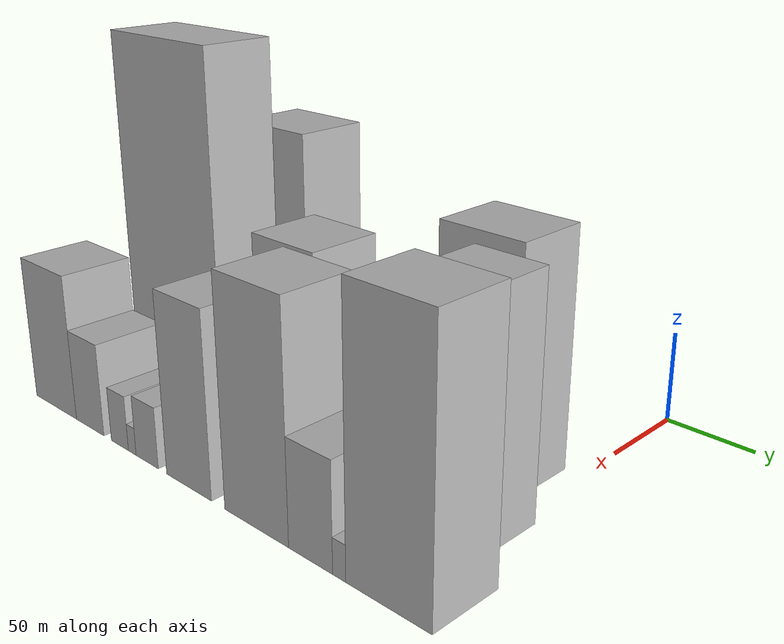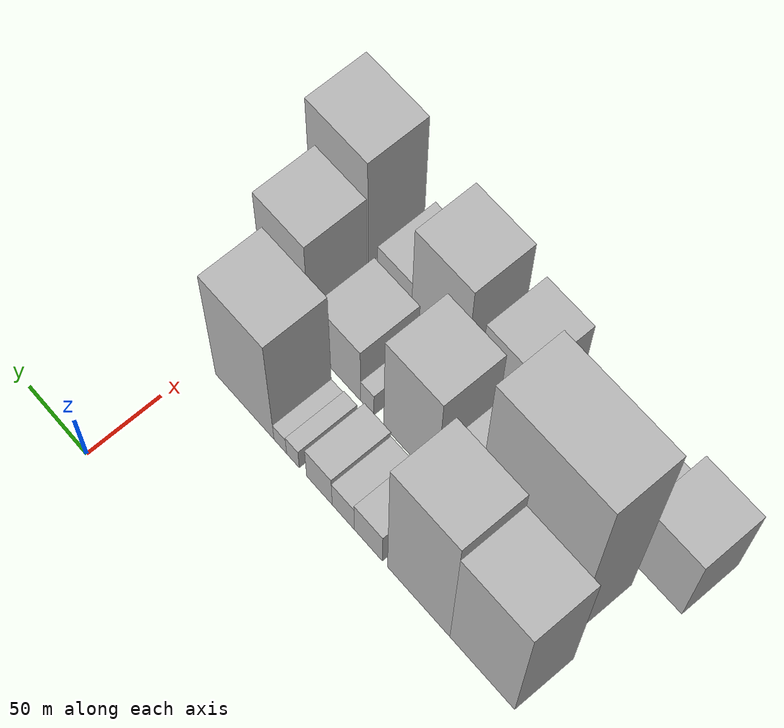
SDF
<sdf version="1.6">
 <world name="default">
  <model name="building_9">
   <static>1</static>
   <pose>100.0000 -223.2876 0 0.000000 0.000000 0.000000</pose>
   <link name="link">
    <pose>0 0 67.50 0 0 0</pose>
    <collision name="collision"><geometry><box><size>40.0000 49.3688 135.0000</size></box></geometry></collision>
    <visual name="visual">
     <cast_shadows>0</cast_shadows>
     <geometry><box><size>40.0000 49.3688 135.0000</size></box></geometry>
     <material>
      <script>
       <uri>model://HANNAS_wall/materials/scripts</uri>
       <uri>model://HANNAS_wall/materials/textures</uri>
       <name>vrc/HANNAS_wall</name>
      </script>
     </material>
    </visual>
   </link>
  </model>
  <model name="building_10">
   <static>1</static>
   <pose>100.0000 -174.2582 0 0.000000 0.000000 0.000000</pose>
   <link name="link">
    <pose>0 0 75.00 0 0 0</pose>
    <collision name="collision"><geometry><box><size>40.0000 48.6901 150.0000</size></box></geometry></collision>
    <visual name="visual">
     <cast_shadows>0</cast_shadows>
     <geometry><box><size>40.0000 48.6901 150.0000</size></box></geometry>
     <material>
      <script>
       <uri>model://HANNAS_wall/materials/scripts</uri>
       <uri>model://HANNAS_wall/materials/textures</uri>
       <name>vrc/HANNAS_wall</name>
      </script>
     </material>
    </visual>
   </link>
  </model>
  <model name="building_11">
   <static>1</static>
   <pose>100.0000 -134.7370 0 0.000000 0.000000 0.000000</pose>
   <link name="link">
    <pose>0 0 19.50 0 0 0</pose>
    <collision name="collision"><geometry><box><size>40.0000 22.3522 39.0000</size></box></geometry></collision>
    <visual name="visual">
     <cast_shadows>0</cast_shadows>
     <geometry><box><size>40.0000 22.3522 39.0000</size></box></geometry>
     <material>
      <script>
       <uri>model://HANNAS_wall/materials/scripts</uri>
       <uri>model://HANNAS_wall/materials/textures</uri>
       <name>vrc/HANNAS_wall</name>
      </script>
     </material>
    </visual>
   </link>
  </model>
  <model name="building_12">
   <static>1</static>
   <pose>100.0000 -114.6446 0 0.000000 0.000000 0.000000</pose>
   <link name="link">
    <pose>0 0 16.50 0 0 0</pose>
    <collision name="collision"><geometry><box><size>40.0000 17.8327 33.0000</size></box></geometry></collision>
    <visual name="visual">
     <cast_shadows>0</cast_shadows>
     <geometry><box><size>40.0000 17.8327 33.0000</size></box></geometry>
     <material>
      <script>
       <uri>model://HANNAS_wall/materials/scripts</uri>
       <uri>model://HANNAS_wall/materials/textures</uri>
       <name>vrc/HANNAS_wall</name>
      </script>
     </material>
    </visual>
   </link>
  </model>
  <model name="building_13">
   <static>1</static>
   <pose>100.0000 -95.3053 0 0.000000 0.000000 0.000000</pose>
   <link name="link">
    <pose>0 0 19.50 0 0 0</pose>
    <collision name="collision"><geometry><box><size>40.0000 20.8459 39.0000</size></box></geometry></collision>
    <visual name="visual">
     <cast_shadows>0</cast_shadows>
     <geometry><box><size>40.0000 20.8459 39.0000</size></box></geometry>
     <material>
      <script>
       <uri>model://HANNAS_wall/materials/scripts</uri>
       <uri>model://HANNAS_wall/materials/textures</uri>
       <name>vrc/HANNAS_wall</name>
      </script>
     </material>
    </visual>
   </link>
  </model>
  <model name="building_14">
   <static>1</static>
   <pose>100.0000 -73.6929 0 0.000000 0.000000 0.000000</pose>
   <link name="link">
    <pose>0 0 12.00 0 0 0</pose>
    <collision name="collision"><geometry><box><size>40.0000 10.3789 24.0000</size></box></geometry></collision>
    <visual name="visual">
     <cast_shadows>0</cast_shadows>
     <geometry><box><size>40.0000 10.3789 24.0000</size></box></geometry>
     <material>
      <script>
       <uri>model://HANNAS_wall/materials/scripts</uri>
       <uri>model://HANNAS_wall/materials/textures</uri>
       <name>vrc/HANNAS_wall</name>
      </script>
     </material>
    </visual>
   </link>
  </model>
  <model name="building_15">
   <static>1</static>
   <pose>100.0000 -63.2719 0 0.000000 0.000000 0.000000</pose>
   <link name="link">
    <pose>0 0 10.50 0 0 0</pose>
    <collision name="collision"><geometry><box><size>40.0000 10.4631 21.0000</size></box></geometry></collision>
    <visual name="visual">
     <cast_shadows>0</cast_shadows>
     <geometry><box><size>40.0000 10.4631 21.0000</size></box></geometry>
     <material>
      <script>
       <uri>model://HANNAS_wall/materials/scripts</uri>
       <uri>model://HANNAS_wall/materials/textures</uri>
       <name>vrc/HANNAS_wall</name>
      </script>
     </material>
    </visual>
   </link>
  </model>
  <model name="building_16">
   <static>1</static>
   <pose>100.0000 -33.5212 0 0.000000 0.000000 0.000000</pose>
   <link name="link">
    <pose>0 0 63.00 0 0 0</pose>
    <collision name="collision"><geometry><box><size>40.0000 49.0381 126.0000</size></box></geometry></collision>
    <visual name="visual">
     <cast_shadows>0</cast_shadows>
     <geometry><box><size>40.0000 49.0381 126.0000</size></box></geometry>
     <material>
      <script>
       <uri>model://HANNAS_wall/materials/scripts</uri>
       <uri>model://HANNAS_wall/materials/textures</uri>
       <name>vrc/HANNAS_wall</name>
      </script>
     </material>
    </visual>
   </link>
  </model>
  <model name="building_41">
   <static>1</static>
   <pose>149.0000 -200.4970 0 0.000000 0.000000 0.000000</pose>
   <link name="link">
    <pose>0 0 99.00 0 0 0</pose>
    <collision name="collision"><geometry><box><size>40.0000 76.5833 198.0000</size></box></geometry></collision>
    <visual name="visual">
     <cast_shadows>0</cast_shadows>
     <geometry><box><size>40.0000 76.5833 198.0000</size></box></geometry>
     <material>
      <script>
       <uri>model://HANNAS_wall/materials/scripts</uri>
       <uri>model://HANNAS_wall/materials/textures</uri>
       <name>vrc/HANNAS_wall</name>
      </script>
     </material>
    </visual>
   </link>
  </model>
  <model name="building_42">
   <static>1</static>
   <pose>149.0000 -147.3521 0 0.000000 0.000000 0.000000</pose>
   <link name="link">
    <pose>0 0 27.00 0 0 0</pose>
    <collision name="collision"><geometry><box><size>40.0000 29.7065 54.0000</size></box></geometry></collision>
    <visual name="visual">
     <cast_shadows>0</cast_shadows>
     <geometry><box><size>40.0000 29.7065 54.0000</size></box></geometry>
     <material>
      <script>
       <uri>model://HANNAS_wall/materials/scripts</uri>
       <uri>model://HANNAS_wall/materials/textures</uri>
       <name>vrc/HANNAS_wall</name>
      </script>
     </material>
    </visual>
   </link>
  </model>
  <model name="building_43">
   <static>1</static>
   <pose>149.0000 -111.2031 0 0.000000 0.000000 0.000000</pose>
   <link name="link">
    <pose>0 0 57.00 0 0 0</pose>
    <collision name="collision"><geometry><box><size>40.0000 42.5916 114.0000</size></box></geometry></collision>
    <visual name="visual">
     <cast_shadows>0</cast_shadows>
     <geometry><box><size>40.0000 42.5916 114.0000</size></box></geometry>
     <material>
      <script>
       <uri>model://HANNAS_wall/materials/scripts</uri>
       <uri>model://HANNAS_wall/materials/textures</uri>
       <name>vrc/HANNAS_wall</name>
      </script>
     </material>
    </visual>
   </link>
  </model>
  <model name="building_44">
   <static>1</static>
   <pose>149.0000 -76.4898 0 0.000000 0.000000 0.000000</pose>
   <link name="link">
    <pose>0 0 13.50 0 0 0</pose>
    <collision name="collision"><geometry><box><size>40.0000 10.8350 27.0000</size></box></geometry></collision>
    <visual name="visual">
     <cast_shadows>0</cast_shadows>
     <geometry><box><size>40.0000 10.8350 27.0000</size></box></geometry>
     <material>
      <script>
       <uri>model://HANNAS_wall/materials/scripts</uri>
       <uri>model://HANNAS_wall/materials/textures</uri>
       <name>vrc/HANNAS_wall</name>
      </script>
     </material>
    </visual>
   </link>
  </model>
  <model name="building_45">
   <static>1</static>
   <pose>149.0000 -53.2678 0 0.000000 0.000000 0.000000</pose>
   <link name="link">
    <pose>0 0 33.00 0 0 0</pose>
    <collision name="collision"><geometry><box><size>40.0000 35.6089 66.0000</size></box></geometry></collision>
    <visual name="visual">
     <cast_shadows>0</cast_shadows>
     <geometry><box><size>40.0000 35.6089 66.0000</size></box></geometry>
     <material>
      <script>
       <uri>model://HANNAS_wall/materials/scripts</uri>
       <uri>model://HANNAS_wall/materials/textures</uri>
       <name>vrc/HANNAS_wall</name>
      </script>
     </material>
    </visual>
   </link>
  </model>
  <model name="building_46">
   <static>1</static>
   <pose>149.0000 -9.8312 0 0.000000 0.000000 0.000000</pose>
   <link name="link">
    <pose>0 0 61.50 0 0 0</pose>
    <collision name="collision"><geometry><box><size>40.0000 39.2644 123.0000</size></box></geometry></collision>
    <visual name="visual">
     <cast_shadows>0</cast_shadows>
     <geometry><box><size>40.0000 39.2644 123.0000</size></box></geometry>
     <material>
      <script>
       <uri>model://HANNAS_wall/materials/scripts</uri>
       <uri>model://HANNAS_wall/materials/textures</uri>
       <name>vrc/HANNAS_wall</name>
      </script>
     </material>
    </visual>
   </link>
  </model>
  <model name="building_71">
   <static>1</static>
   <pose>198.0000 -246.3051 0 0.000000 0.000000 0.000000</pose>
   <link name="link">
    <pose>0 0 40.50 0 0 0</pose>
    <collision name="collision"><geometry><box><size>40.0000 41.0024 81.0000</size></box></geometry></collision>
    <visual name="visual">
     <cast_shadows>0</cast_shadows>
     <geometry><box><size>40.0000 41.0024 81.0000</size></box></geometry>
     <material>
      <script>
       <uri>model://HANNAS_wall/materials/scripts</uri>
       <uri>model://HANNAS_wall/materials/textures</uri>
       <name>vrc/HANNAS_wall</name>
      </script>
     </material>
    </visual>
   </link>
  </model>
  <model name="building_72">
   <static>1</static>
   <pose>198.0000 -212.6303 0 0.000000 0.000000 0.000000</pose>
   <link name="link">
    <pose>0 0 25.50 0 0 0</pose>
    <collision name="collision"><geometry><box><size>40.0000 26.3472 51.0000</size></box></geometry></collision>
    <visual name="visual">
     <cast_shadows>0</cast_shadows>
     <geometry><box><size>40.0000 26.3472 51.0000</size></box></geometry>
     <material>
      <script>
       <uri>model://HANNAS_wall/materials/scripts</uri>
       <uri>model://HANNAS_wall/materials/textures</uri>
       <name>vrc/HANNAS_wall</name>
      </script>
     </material>
    </visual>
   </link>
  </model>
  <model name="building_73">
   <static>1</static>
   <pose>198.0000 -184.7984 0 0.000000 0.000000 0.000000</pose>
   <link name="link">
    <pose>0 0 15.00 0 0 0</pose>
    <collision name="collision"><geometry><box><size>40.0000 15.3164 30.0000</size></box></geometry></collision>
    <visual name="visual">
     <cast_shadows>0</cast_shadows>
     <geometry><box><size>40.0000 15.3164 30.0000</size></box></geometry>
     <material>
      <script>
       <uri>model://HANNAS_wall/materials/scripts</uri>
       <uri>model://HANNAS_wall/materials/textures</uri>
       <name>vrc/HANNAS_wall</name>
      </script>
     </material>
    </visual>
   </link>
  </model>
  <model name="building_74">
   <static>1</static>
   <pose>198.0000 -173.7482 0 0.000000 0.000000 0.000000</pose>
   <link name="link">
    <pose>0 0 7.50 0 0 0</pose>
    <collision name="collision"><geometry><box><size>40.0000 6.7840 15.0000</size></box></geometry></collision>
    <visual name="visual">
     <cast_shadows>0</cast_shadows>
     <geometry><box><size>40.0000 6.7840 15.0000</size></box></geometry>
     <material>
      <script>
       <uri>model://HANNAS_wall/materials/scripts</uri>
       <uri>model://HANNAS_wall/materials/textures</uri>
       <name>vrc/HANNAS_wall</name>
      </script>
     </material>
    </visual>
   </link>
  </model>
  <model name="building_75">
   <static>1</static>
   <pose>198.0000 -160.8856 0 0.000000 0.000000 0.000000</pose>
   <link name="link">
    <pose>0 0 16.50 0 0 0</pose>
    <collision name="collision"><geometry><box><size>40.0000 18.9413 33.0000</size></box></geometry></collision>
    <visual name="visual">
     <cast_shadows>0</cast_shadows>
     <geometry><box><size>40.0000 18.9413 33.0000</size></box></geometry>
     <material>
      <script>
       <uri>model://HANNAS_wall/materials/scripts</uri>
       <uri>model://HANNAS_wall/materials/textures</uri>
       <name>vrc/HANNAS_wall</name>
      </script>
     </material>
    </visual>
   </link>
  </model>
  <model name="building_76">
   <static>1</static>
   <pose>198.0000 -126.8628 0 0.000000 0.000000 0.000000</pose>
   <link name="link">
    <pose>0 0 48.00 0 0 0</pose>
    <collision name="collision"><geometry><box><size>40.0000 35.1044 96.0000</size></box></geometry></collision>
    <visual name="visual">
     <cast_shadows>0</cast_shadows>
     <geometry><box><size>40.0000 35.1044 96.0000</size></box></geometry>
     <material>
      <script>
       <uri>model://HANNAS_wall/materials/scripts</uri>
       <uri>model://HANNAS_wall/materials/textures</uri>
       <name>vrc/HANNAS_wall</name>
      </script>
     </material>
    </visual>
   </link>
  </model>
  <model name="building_77">
   <static>1</static>
   <pose>198.0000 -77.2726 0 0.000000 0.000000 0.000000</pose>
   <link name="link">
    <pose>0 0 58.50 0 0 0</pose>
    <collision name="collision"><geometry><box><size>40.0000 44.0760 117.0000</size></box></geometry></collision>
    <visual name="visual">
     <cast_shadows>0</cast_shadows>
     <geometry><box><size>40.0000 44.0760 117.0000</size></box></geometry>
     <material>
      <script>
       <uri>model://HANNAS_wall/materials/scripts</uri>
       <uri>model://HANNAS_wall/materials/textures</uri>
       <name>vrc/HANNAS_wall</name>
      </script>
     </material>
    </visual>
   </link>
  </model>
  <model name="building_78">
   <static>1</static>
   <pose>198.0000 -41.4130 0 0.000000 0.000000 0.000000</pose>
   <link name="link">
    <pose>0 0 27.00 0 0 0</pose>
    <collision name="collision"><geometry><box><size>40.0000 27.6431 54.0000</size></box></geometry></collision>
    <visual name="visual">
     <cast_shadows>0</cast_shadows>
     <geometry><box><size>40.0000 27.6431 54.0000</size></box></geometry>
     <material>
      <script>
       <uri>model://HANNAS_wall/materials/scripts</uri>
       <uri>model://HANNAS_wall/materials/textures</uri>
       <name>vrc/HANNAS_wall</name>
      </script>
     </material>
    </visual>
   </link>
  </model>
  <model name="building_79">
   <static>1</static>
   <pose>198.0000 -23.6665 0 0.000000 0.000000 0.000000</pose>
   <link name="link">
    <pose>0 0 9.00 0 0 0</pose>
    <collision name="collision"><geometry><box><size>40.0000 7.8500 18.0000</size></box></geometry></collision>
    <visual name="visual">
     <cast_shadows>0</cast_shadows>
     <geometry><box><size>40.0000 7.8500 18.0000</size></box></geometry>
     <material>
      <script>
       <uri>model://HANNAS_wall/materials/scripts</uri>
       <uri>model://HANNAS_wall/materials/textures</uri>
       <name>vrc/HANNAS_wall</name>
      </script>
     </material>
    </visual>
   </link>
  </model>
  <model name="building_80">
   <static>1</static>
   <pose>198.0000 4.1180 0 0.000000 0.000000 0.000000</pose>
   <link name="link">
    <pose>0 0 67.50 0 0 0</pose>
    <collision name="collision"><geometry><box><size>40.0000 47.7190 135.0000</size></box></geometry></collision>
    <visual name="visual">
     <cast_shadows>0</cast_shadows>
     <geometry><box><size>40.0000 47.7190 135.0000</size></box></geometry>
     <material>
      <script>
       <uri>model://HANNAS_wall/materials/scripts</uri>
       <uri>model://HANNAS_wall/materials/textures</uri>
       <name>vrc/HANNAS_wall</name>
      </script>
     </material>
    </visual>
   </link>
  </model>
 </world>
</sdf>
